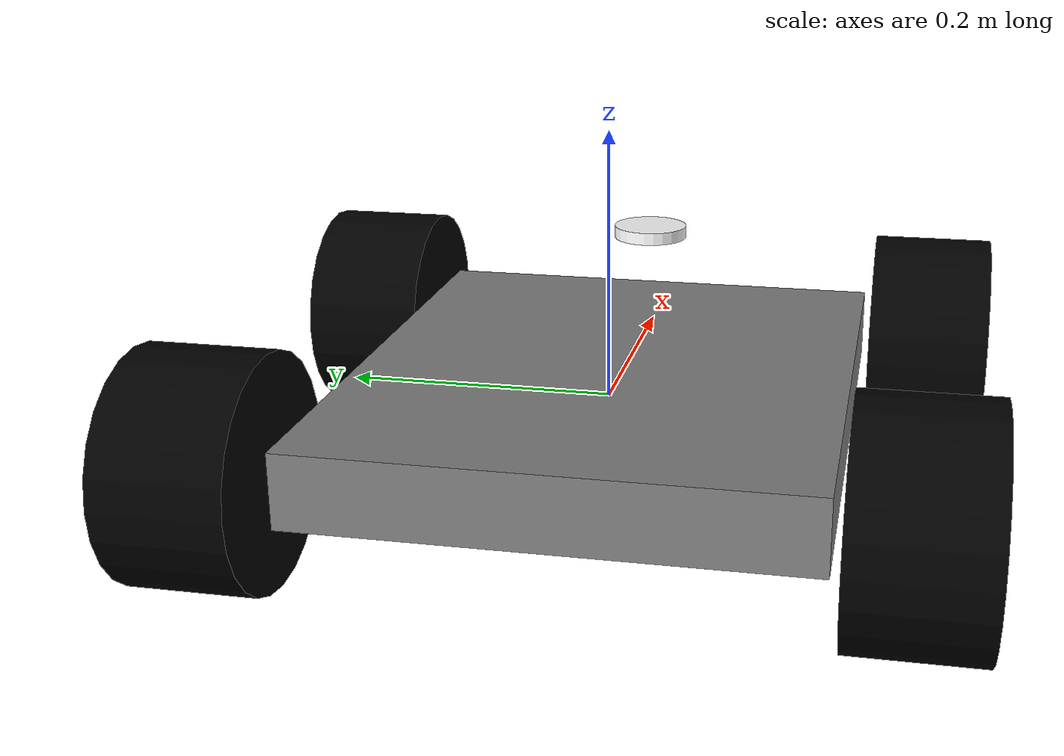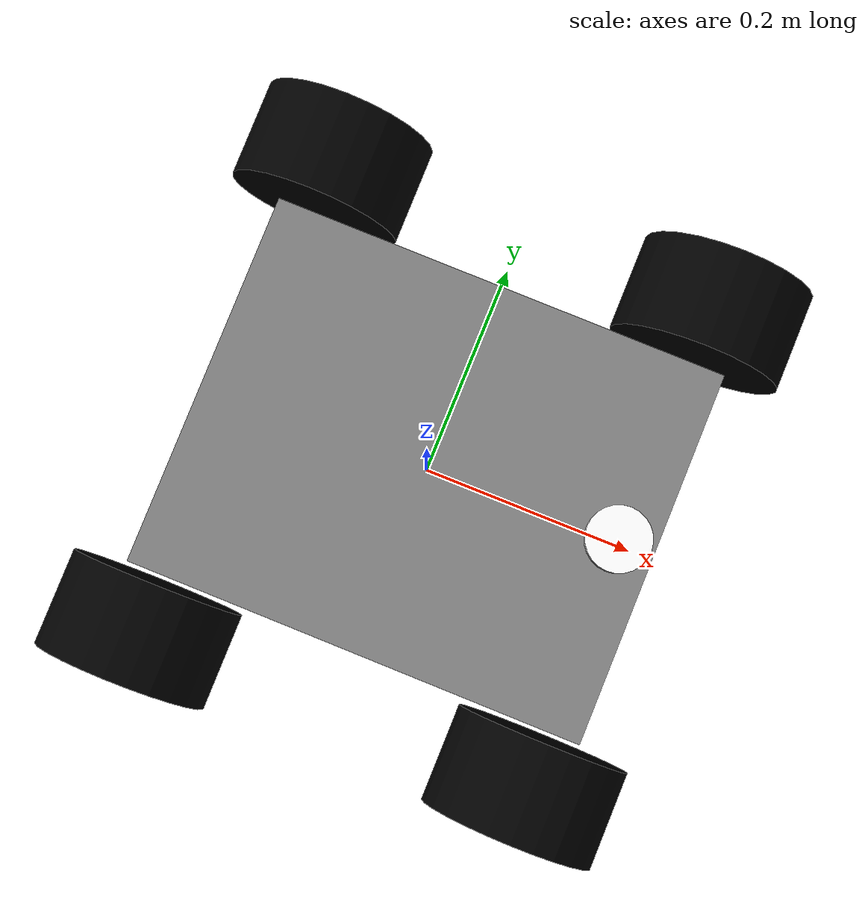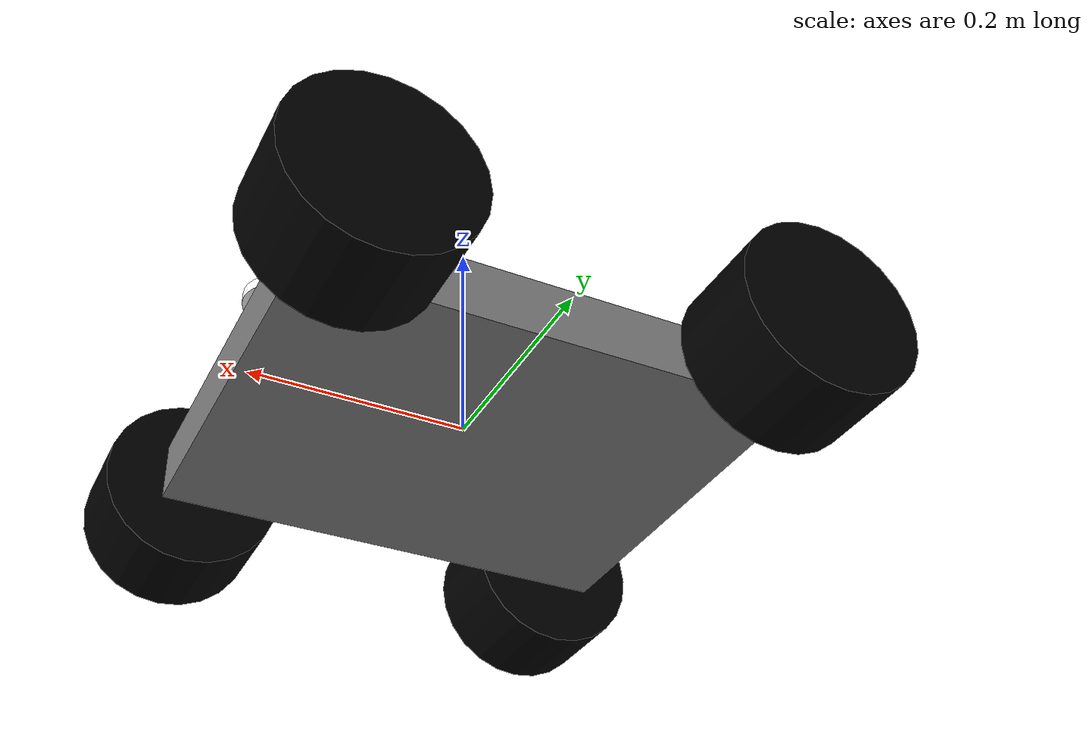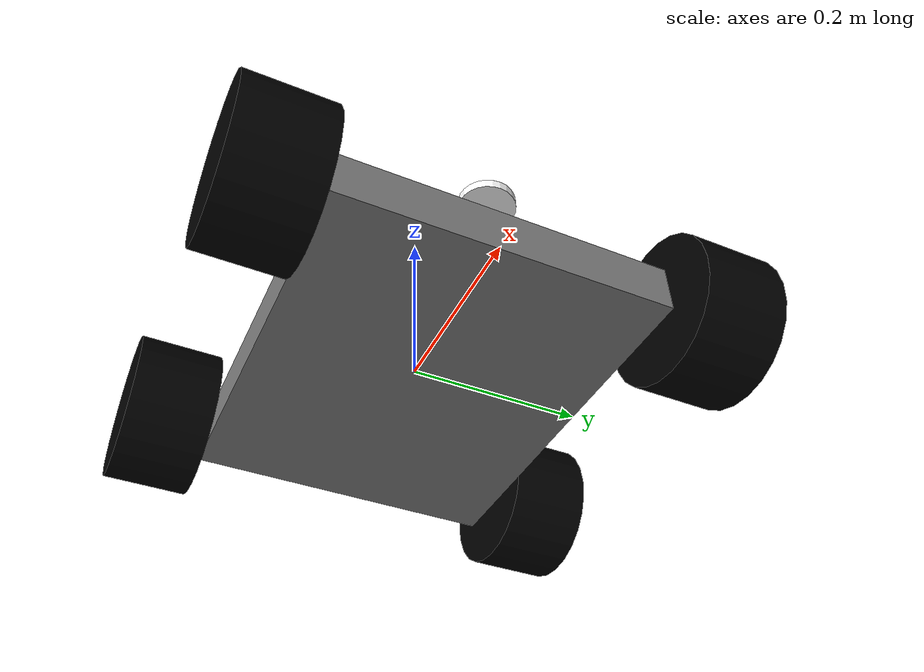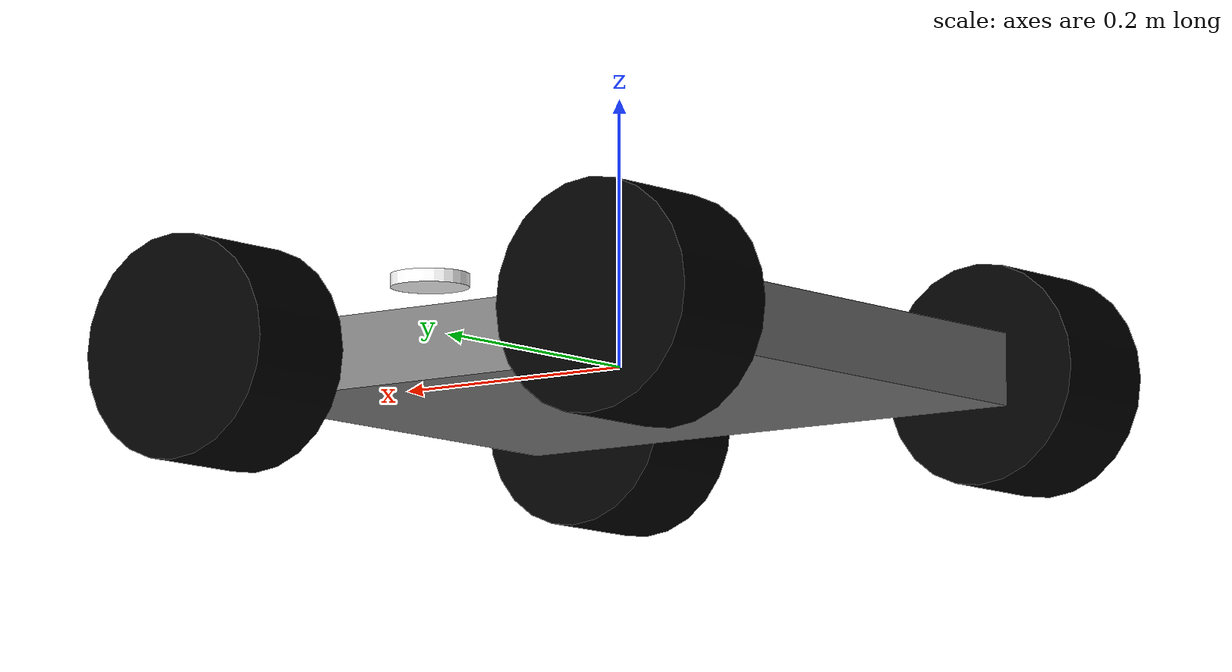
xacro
<?xml version="1.0"?>
<robot xmlns:xacro="http://www.ros.org/wiki/xacro" name="beaglebone">
	<xacro:property name="bodyWidth" value="0.36" />
	<xacro:property name="bodyLength" value="0.44" />
	<xacro:property name="bodyHeigth" value="0.054" />
	<xacro:property name="wheelRadius" value="0.0825" />
	<xacro:property name="wheelWidth" value="0.092" />
	<xacro:property name="M_PI" value="3.1415926535" />
	<link name="base_footprint">
		<visual>
			<geometry>
				<box size="0.001 0.001 0.001" />
			</geometry>
		</visual>
	</link>

	<link name="base_link">
		<visual>
			<geometry>
				<box size="${bodyWidth} ${bodyLength} ${bodyHeigth}"/>
			</geometry>
			<material name="gray">
				<color rgba="0.5 0.5 0.5 1"/>
			</material>
		</visual>
		<collision>
			<geometry>
				<cylinder length="0.2" radius="0.4" />
			</geometry>
		</collision>
	</link>

	<joint name="base_footprint_joint" type="fixed">
		<parent link="base_footprint" />
		<child link="base_link" />
		<origin rpy="0 0 ${-0.5*M_PI}"/>
	</joint>

	<link name="wheelFrontLeft">
		<visual>
			<geometry>
				<cylinder length="${wheelWidth}" radius="${wheelRadius}" />
			</geometry>
			<material name="black">
				<color rgba="0 0 0 1" />
			</material>
			<origin rpy="0 1.57075 0" xyz="-${bodyHeigth} 0 0" />
		</visual>
	</link>

	<link name="wheelFrontRight">
		<visual>
			<geometry>
				<cylinder length="${wheelWidth}" radius="${wheelRadius}" />
			</geometry>
			<material name="black"/>
			<origin rpy="0 1.57075 0" xyz="${bodyHeigth} 0 0" />
		</visual>
	</link>

	<link name="wheelRearLeft">
		<visual>
			<geometry>
				<cylinder length="${wheelWidth}" radius="${wheelRadius}" />
			</geometry>
			<material name="black"/>
			<origin rpy="0 1.57075 0" xyz="-${bodyHeigth} 0 0" />
		</visual>
	</link>

	<link name="wheelRearRight">
		<visual>
			<geometry>
				<cylinder length="${wheelWidth}" radius="${wheelRadius}" />
			</geometry>
			<material name="black"/>
			<origin rpy="0 1.57075 0" xyz="${bodyHeigth} 0 0" />
		</visual>
	</link>

	<link name="laser_scanner">
		<visual>
			<origin rpy="0 0 0" xyz="0 0 ${wheelRadius}"/>
			<geometry>
				<cylinder radius="0.03" length="0.01" />
			</geometry>
			<material name="white">
				<color rgba="1 1 1 1"/>
			</material>
		</visual>
	</link>

	<link name="base_imu">
		<visual>
			<geometry>
				<box size="0.001 0.001 0.001" />
			</geometry>
			<material name="white">
				<color rgba="1 1 1 1"/>
			</material>
		</visual>
	</link>

	<joint name="base_to_front_left_wheel" type="fixed">
		<parent link="base_link"/>
		<child link="wheelFrontLeft"/>
		<origin xyz="-0.18 0.19 0"/>
	</joint>

	<joint name="base_to_front_right_wheel" type="fixed">
		<parent link="base_link"/>
		<child link="wheelFrontRight"/>
		<origin xyz="0.18 0.19 0"/>
	</joint>

	<joint name="base_to_rear_left_wheel" type="fixed">
		<parent link="base_link"/>
		<child link="wheelRearLeft"/>
		<origin xyz="-0.18 -0.19 0"/>
	</joint>

	<joint name="base_to_rear_right_wheel" type="fixed">
		<parent link="base_link"/>
		<child link="wheelRearRight"/>
		<origin xyz="0.18 -0.19 0"/>
	</joint>

	<joint name="base_to_laser" type="fixed">
		<parent link="base_link"/>
		<child link="laser_scanner"/>
		<origin xyz="0 0.18 0" rpy="0 0 ${-0.5*M_PI}"/>
	</joint>

	<joint name="base_to_imu" type="fixed">
		<parent link="base_link"/>
		<child link="base_imu"/>
		<origin xyz="0 0 0.001" rpy="0 0 0"/>
	</joint>
</robot>
